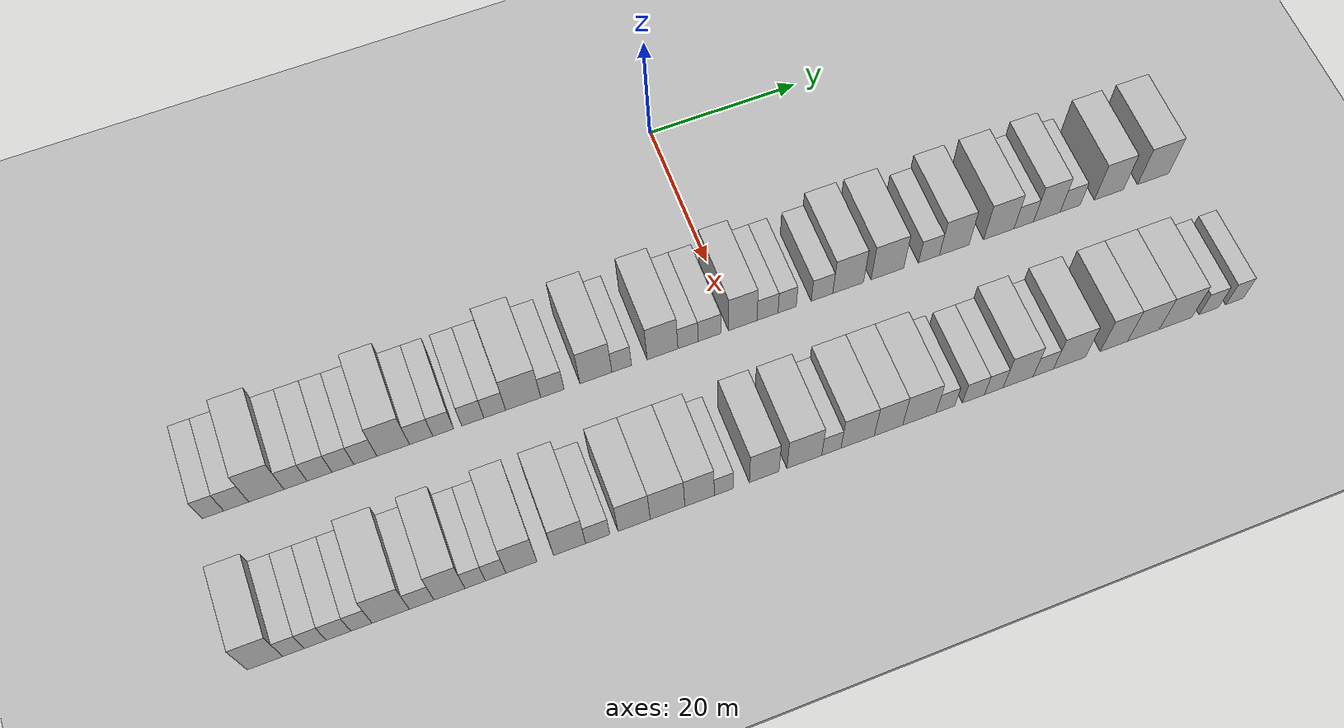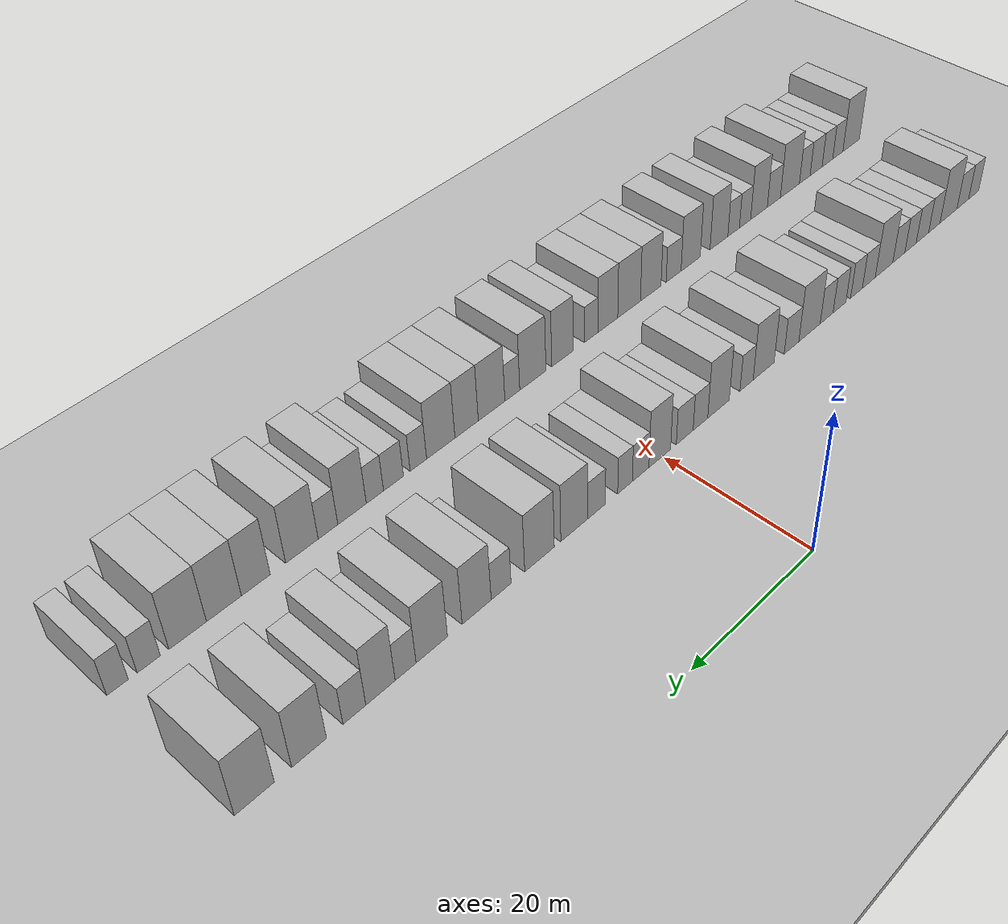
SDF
<sdf version="1.6">
 <world name="default">
  <include><name>ground_plane_1</name><uri>model://HANNAS_ground_plane</uri></include>
  <include>
   <name>ground_plane_2</name>
   <uri>model://HANNAS_ground_plane</uri>
   <pose>100 0 0  0 0 0</pose>
  </include>
  <model name="building_36">
   <static>1</static>
   <pose>25.0000 -65.0861 0 0.000000 0.000000 0.000000</pose>
   <link name="link">
    <pose>0 0 3.00 0 0 0</pose>
    <collision name="collision"><geometry><box><size>10.0000 2.5619 6.0000</size></box></geometry></collision>
    <visual name="visual">
     <cast_shadows>0</cast_shadows>
     <geometry><box><size>10.0000 2.5619 6.0000</size></box></geometry>
     <material>
      <script>
       <uri>model://HANNAS_wall/materials/scripts</uri>
       <uri>model://HANNAS_wall/materials/textures</uri>
       <name>vrc/HANNAS_wall</name>
      </script>
     </material>
    </visual>
   </link>
  </model>
  <model name="building_37">
   <static>1</static>
   <pose>25.0000 -62.3235 0 0.000000 0.000000 0.000000</pose>
   <link name="link">
    <pose>0 0 3.00 0 0 0</pose>
    <collision name="collision"><geometry><box><size>10.0000 2.9633 6.0000</size></box></geometry></collision>
    <visual name="visual">
     <cast_shadows>0</cast_shadows>
     <geometry><box><size>10.0000 2.9633 6.0000</size></box></geometry>
     <material>
      <script>
       <uri>model://HANNAS_wall/materials/scripts</uri>
       <uri>model://HANNAS_wall/materials/textures</uri>
       <name>vrc/HANNAS_wall</name>
      </script>
     </material>
    </visual>
   </link>
  </model>
  <model name="building_38">
   <static>1</static>
   <pose>25.0000 -58.7388 0 0.000000 0.000000 0.000000</pose>
   <link name="link">
    <pose>0 0 4.50 0 0 0</pose>
    <collision name="collision"><geometry><box><size>10.0000 4.2061 9.0000</size></box></geometry></collision>
    <visual name="visual">
     <cast_shadows>0</cast_shadows>
     <geometry><box><size>10.0000 4.2061 9.0000</size></box></geometry>
     <material>
      <script>
       <uri>model://HANNAS_wall/materials/scripts</uri>
       <uri>model://HANNAS_wall/materials/textures</uri>
       <name>vrc/HANNAS_wall</name>
      </script>
     </material>
    </visual>
   </link>
  </model>
  <model name="building_39">
   <static>1</static>
   <pose>25.0000 -55.2406 0 0.000000 0.000000 0.000000</pose>
   <link name="link">
    <pose>0 0 3.00 0 0 0</pose>
    <collision name="collision"><geometry><box><size>10.0000 2.7902 6.0000</size></box></geometry></collision>
    <visual name="visual">
     <cast_shadows>0</cast_shadows>
     <geometry><box><size>10.0000 2.7902 6.0000</size></box></geometry>
     <material>
      <script>
       <uri>model://HANNAS_wall/materials/scripts</uri>
       <uri>model://HANNAS_wall/materials/textures</uri>
       <name>vrc/HANNAS_wall</name>
      </script>
     </material>
    </visual>
   </link>
  </model>
  <model name="building_40">
   <static>1</static>
   <pose>25.0000 -52.3560 0 0.000000 0.000000 0.000000</pose>
   <link name="link">
    <pose>0 0 3.00 0 0 0</pose>
    <collision name="collision"><geometry><box><size>10.0000 2.9790 6.0000</size></box></geometry></collision>
    <visual name="visual">
     <cast_shadows>0</cast_shadows>
     <geometry><box><size>10.0000 2.9790 6.0000</size></box></geometry>
     <material>
      <script>
       <uri>model://HANNAS_wall/materials/scripts</uri>
       <uri>model://HANNAS_wall/materials/textures</uri>
       <name>vrc/HANNAS_wall</name>
      </script>
     </material>
    </visual>
   </link>
  </model>
  <model name="building_41">
   <static>1</static>
   <pose>25.0000 -49.5357 0 0.000000 0.000000 0.000000</pose>
   <link name="link">
    <pose>0 0 3.00 0 0 0</pose>
    <collision name="collision"><geometry><box><size>10.0000 2.6617 6.0000</size></box></geometry></collision>
    <visual name="visual">
     <cast_shadows>0</cast_shadows>
     <geometry><box><size>10.0000 2.6617 6.0000</size></box></geometry>
     <material>
      <script>
       <uri>model://HANNAS_wall/materials/scripts</uri>
       <uri>model://HANNAS_wall/materials/textures</uri>
       <name>vrc/HANNAS_wall</name>
      </script>
     </material>
    </visual>
   </link>
  </model>
  <model name="building_42">
   <static>1</static>
   <pose>25.0000 -46.8010 0 0.000000 0.000000 0.000000</pose>
   <link name="link">
    <pose>0 0 3.00 0 0 0</pose>
    <collision name="collision"><geometry><box><size>10.0000 2.8076 6.0000</size></box></geometry></collision>
    <visual name="visual">
     <cast_shadows>0</cast_shadows>
     <geometry><box><size>10.0000 2.8076 6.0000</size></box></geometry>
     <material>
      <script>
       <uri>model://HANNAS_wall/materials/scripts</uri>
       <uri>model://HANNAS_wall/materials/textures</uri>
       <name>vrc/HANNAS_wall</name>
      </script>
     </material>
    </visual>
   </link>
  </model>
  <model name="building_43">
   <static>1</static>
   <pose>25.0000 -43.4065 0 0.000000 0.000000 0.000000</pose>
   <link name="link">
    <pose>0 0 4.50 0 0 0</pose>
    <collision name="collision"><geometry><box><size>10.0000 3.9816 9.0000</size></box></geometry></collision>
    <visual name="visual">
     <cast_shadows>0</cast_shadows>
     <geometry><box><size>10.0000 3.9816 9.0000</size></box></geometry>
     <material>
      <script>
       <uri>model://HANNAS_wall/materials/scripts</uri>
       <uri>model://HANNAS_wall/materials/textures</uri>
       <name>vrc/HANNAS_wall</name>
      </script>
     </material>
    </visual>
   </link>
  </model>
  <model name="building_44">
   <static>1</static>
   <pose>25.0000 -39.9790 0 0.000000 0.000000 0.000000</pose>
   <link name="link">
    <pose>0 0 3.00 0 0 0</pose>
    <collision name="collision"><geometry><box><size>10.0000 2.8733 6.0000</size></box></geometry></collision>
    <visual name="visual">
     <cast_shadows>0</cast_shadows>
     <geometry><box><size>10.0000 2.8733 6.0000</size></box></geometry>
     <material>
      <script>
       <uri>model://HANNAS_wall/materials/scripts</uri>
       <uri>model://HANNAS_wall/materials/textures</uri>
       <name>vrc/HANNAS_wall</name>
      </script>
     </material>
    </visual>
   </link>
  </model>
  <model name="building_45">
   <static>1</static>
   <pose>25.0000 -37.2530 0 0.000000 0.000000 0.000000</pose>
   <link name="link">
    <pose>0 0 3.00 0 0 0</pose>
    <collision name="collision"><geometry><box><size>10.0000 2.5789 6.0000</size></box></geometry></collision>
    <visual name="visual">
     <cast_shadows>0</cast_shadows>
     <geometry><box><size>10.0000 2.5789 6.0000</size></box></geometry>
     <material>
      <script>
       <uri>model://HANNAS_wall/materials/scripts</uri>
       <uri>model://HANNAS_wall/materials/textures</uri>
       <name>vrc/HANNAS_wall</name>
      </script>
     </material>
    </visual>
   </link>
  </model>
  <model name="building_46">
   <static>1</static>
   <pose>25.0000 -33.5824 0 0.000000 0.000000 0.000000</pose>
   <link name="link">
    <pose>0 0 3.00 0 0 0</pose>
    <collision name="collision"><geometry><box><size>10.0000 2.7622 6.0000</size></box></geometry></collision>
    <visual name="visual">
     <cast_shadows>0</cast_shadows>
     <geometry><box><size>10.0000 2.7622 6.0000</size></box></geometry>
     <material>
      <script>
       <uri>model://HANNAS_wall/materials/scripts</uri>
       <uri>model://HANNAS_wall/materials/textures</uri>
       <name>vrc/HANNAS_wall</name>
      </script>
     </material>
    </visual>
   </link>
  </model>
  <model name="building_47">
   <static>1</static>
   <pose>25.0000 -30.8432 0 0.000000 0.000000 0.000000</pose>
   <link name="link">
    <pose>0 0 3.00 0 0 0</pose>
    <collision name="collision"><geometry><box><size>10.0000 2.7163 6.0000</size></box></geometry></collision>
    <visual name="visual">
     <cast_shadows>0</cast_shadows>
     <geometry><box><size>10.0000 2.7163 6.0000</size></box></geometry>
     <material>
      <script>
       <uri>model://HANNAS_wall/materials/scripts</uri>
       <uri>model://HANNAS_wall/materials/textures</uri>
       <name>vrc/HANNAS_wall</name>
      </script>
     </material>
    </visual>
   </link>
  </model>
  <model name="building_48">
   <static>1</static>
   <pose>25.0000 -27.2847 0 0.000000 0.000000 0.000000</pose>
   <link name="link">
    <pose>0 0 4.50 0 0 0</pose>
    <collision name="collision"><geometry><box><size>10.0000 4.4005 9.0000</size></box></geometry></collision>
    <visual name="visual">
     <cast_shadows>0</cast_shadows>
     <geometry><box><size>10.0000 4.4005 9.0000</size></box></geometry>
     <material>
      <script>
       <uri>model://HANNAS_wall/materials/scripts</uri>
       <uri>model://HANNAS_wall/materials/textures</uri>
       <name>vrc/HANNAS_wall</name>
      </script>
     </material>
    </visual>
   </link>
  </model>
  <model name="building_49">
   <static>1</static>
   <pose>25.0000 -23.6133 0 0.000000 0.000000 0.000000</pose>
   <link name="link">
    <pose>0 0 3.00 0 0 0</pose>
    <collision name="collision"><geometry><box><size>10.0000 2.9424 6.0000</size></box></geometry></collision>
    <visual name="visual">
     <cast_shadows>0</cast_shadows>
     <geometry><box><size>10.0000 2.9424 6.0000</size></box></geometry>
     <material>
      <script>
       <uri>model://HANNAS_wall/materials/scripts</uri>
       <uri>model://HANNAS_wall/materials/textures</uri>
       <name>vrc/HANNAS_wall</name>
      </script>
     </material>
    </visual>
   </link>
  </model>
  <model name="building_50">
   <static>1</static>
   <pose>25.0000 -18.1040 0 0.000000 0.000000 0.000000</pose>
   <link name="link">
    <pose>0 0 4.50 0 0 0</pose>
    <collision name="collision"><geometry><box><size>10.0000 4.0762 9.0000</size></box></geometry></collision>
    <visual name="visual">
     <cast_shadows>0</cast_shadows>
     <geometry><box><size>10.0000 4.0762 9.0000</size></box></geometry>
     <material>
      <script>
       <uri>model://HANNAS_wall/materials/scripts</uri>
       <uri>model://HANNAS_wall/materials/textures</uri>
       <name>vrc/HANNAS_wall</name>
      </script>
     </material>
    </visual>
   </link>
  </model>
  <model name="building_51">
   <static>1</static>
   <pose>25.0000 -14.8109 0 0.000000 0.000000 0.000000</pose>
   <link name="link">
    <pose>0 0 3.00 0 0 0</pose>
    <collision name="collision"><geometry><box><size>10.0000 2.5101 6.0000</size></box></geometry></collision>
    <visual name="visual">
     <cast_shadows>0</cast_shadows>
     <geometry><box><size>10.0000 2.5101 6.0000</size></box></geometry>
     <material>
      <script>
       <uri>model://HANNAS_wall/materials/scripts</uri>
       <uri>model://HANNAS_wall/materials/textures</uri>
       <name>vrc/HANNAS_wall</name>
      </script>
     </material>
    </visual>
   </link>
  </model>
  <model name="building_52">
   <static>1</static>
   <pose>25.0000 -9.5734 0 0.000000 0.000000 0.000000</pose>
   <link name="link">
    <pose>0 0 4.50 0 0 0</pose>
    <collision name="collision"><geometry><box><size>10.0000 3.9649 9.0000</size></box></geometry></collision>
    <visual name="visual">
     <cast_shadows>0</cast_shadows>
     <geometry><box><size>10.0000 3.9649 9.0000</size></box></geometry>
     <material>
      <script>
       <uri>model://HANNAS_wall/materials/scripts</uri>
       <uri>model://HANNAS_wall/materials/textures</uri>
       <name>vrc/HANNAS_wall</name>
      </script>
     </material>
    </visual>
   </link>
  </model>
  <model name="building_53">
   <static>1</static>
   <pose>25.0000 -6.2797 0 0.000000 0.000000 0.000000</pose>
   <link name="link">
    <pose>0 0 3.00 0 0 0</pose>
    <collision name="collision"><geometry><box><size>10.0000 2.6224 6.0000</size></box></geometry></collision>
    <visual name="visual">
     <cast_shadows>0</cast_shadows>
     <geometry><box><size>10.0000 2.6224 6.0000</size></box></geometry>
     <material>
      <script>
       <uri>model://HANNAS_wall/materials/scripts</uri>
       <uri>model://HANNAS_wall/materials/textures</uri>
       <name>vrc/HANNAS_wall</name>
      </script>
     </material>
    </visual>
   </link>
  </model>
  <model name="building_54">
   <static>1</static>
   <pose>25.0000 -3.4822 0 0.000000 0.000000 0.000000</pose>
   <link name="link">
    <pose>0 0 3.00 0 0 0</pose>
    <collision name="collision"><geometry><box><size>10.0000 2.9726 6.0000</size></box></geometry></collision>
    <visual name="visual">
     <cast_shadows>0</cast_shadows>
     <geometry><box><size>10.0000 2.9726 6.0000</size></box></geometry>
     <material>
      <script>
       <uri>model://HANNAS_wall/materials/scripts</uri>
       <uri>model://HANNAS_wall/materials/textures</uri>
       <name>vrc/HANNAS_wall</name>
      </script>
     </material>
    </visual>
   </link>
  </model>
  <model name="building_55">
   <static>1</static>
   <pose>25.0000 0.8563 0 0.000000 0.000000 0.000000</pose>
   <link name="link">
    <pose>0 0 4.50 0 0 0</pose>
    <collision name="collision"><geometry><box><size>10.0000 3.7045 9.0000</size></box></geometry></collision>
    <visual name="visual">
     <cast_shadows>0</cast_shadows>
     <geometry><box><size>10.0000 3.7045 9.0000</size></box></geometry>
     <material>
      <script>
       <uri>model://HANNAS_wall/materials/scripts</uri>
       <uri>model://HANNAS_wall/materials/textures</uri>
       <name>vrc/HANNAS_wall</name>
      </script>
     </material>
    </visual>
   </link>
  </model>
  <model name="building_56">
   <static>1</static>
   <pose>25.0000 4.0962 0 0.000000 0.000000 0.000000</pose>
   <link name="link">
    <pose>0 0 3.00 0 0 0</pose>
    <collision name="collision"><geometry><box><size>10.0000 2.7753 6.0000</size></box></geometry></collision>
    <visual name="visual">
     <cast_shadows>0</cast_shadows>
     <geometry><box><size>10.0000 2.7753 6.0000</size></box></geometry>
     <material>
      <script>
       <uri>model://HANNAS_wall/materials/scripts</uri>
       <uri>model://HANNAS_wall/materials/textures</uri>
       <name>vrc/HANNAS_wall</name>
      </script>
     </material>
    </visual>
   </link>
  </model>
  <model name="building_57">
   <static>1</static>
   <pose>25.0000 6.6887 0 0.000000 0.000000 0.000000</pose>
   <link name="link">
    <pose>0 0 3.00 0 0 0</pose>
    <collision name="collision"><geometry><box><size>10.0000 2.4099 6.0000</size></box></geometry></collision>
    <visual name="visual">
     <cast_shadows>0</cast_shadows>
     <geometry><box><size>10.0000 2.4099 6.0000</size></box></geometry>
     <material>
      <script>
       <uri>model://HANNAS_wall/materials/scripts</uri>
       <uri>model://HANNAS_wall/materials/textures</uri>
       <name>vrc/HANNAS_wall</name>
      </script>
     </material>
    </visual>
   </link>
  </model>
  <model name="building_58">
   <static>1</static>
   <pose>25.0000 11.3192 0 0.000000 0.000000 0.000000</pose>
   <link name="link">
    <pose>0 0 3.00 0 0 0</pose>
    <collision name="collision"><geometry><box><size>10.0000 2.8510 6.0000</size></box></geometry></collision>
    <visual name="visual">
     <cast_shadows>0</cast_shadows>
     <geometry><box><size>10.0000 2.8510 6.0000</size></box></geometry>
     <material>
      <script>
       <uri>model://HANNAS_wall/materials/scripts</uri>
       <uri>model://HANNAS_wall/materials/textures</uri>
       <name>vrc/HANNAS_wall</name>
      </script>
     </material>
    </visual>
   </link>
  </model>
  <model name="building_59">
   <static>1</static>
   <pose>25.0000 14.8123 0 0.000000 0.000000 0.000000</pose>
   <link name="link">
    <pose>0 0 4.50 0 0 0</pose>
    <collision name="collision"><geometry><box><size>10.0000 4.1352 9.0000</size></box></geometry></collision>
    <visual name="visual">
     <cast_shadows>0</cast_shadows>
     <geometry><box><size>10.0000 4.1352 9.0000</size></box></geometry>
     <material>
      <script>
       <uri>model://HANNAS_wall/materials/scripts</uri>
       <uri>model://HANNAS_wall/materials/textures</uri>
       <name>vrc/HANNAS_wall</name>
      </script>
     </material>
    </visual>
   </link>
  </model>
  <model name="building_60">
   <static>1</static>
   <pose>25.0000 20.0872 0 0.000000 0.000000 0.000000</pose>
   <link name="link">
    <pose>0 0 4.50 0 0 0</pose>
    <collision name="collision"><geometry><box><size>10.0000 4.4147 9.0000</size></box></geometry></collision>
    <visual name="visual">
     <cast_shadows>0</cast_shadows>
     <geometry><box><size>10.0000 4.4147 9.0000</size></box></geometry>
     <material>
      <script>
       <uri>model://HANNAS_wall/materials/scripts</uri>
       <uri>model://HANNAS_wall/materials/textures</uri>
       <name>vrc/HANNAS_wall</name>
      </script>
     </material>
    </visual>
   </link>
  </model>
  <model name="building_61">
   <static>1</static>
   <pose>25.0000 25.7175 0 0.000000 0.000000 0.000000</pose>
   <link name="link">
    <pose>0 0 3.00 0 0 0</pose>
    <collision name="collision"><geometry><box><size>10.0000 2.8458 6.0000</size></box></geometry></collision>
    <visual name="visual">
     <cast_shadows>0</cast_shadows>
     <geometry><box><size>10.0000 2.8458 6.0000</size></box></geometry>
     <material>
      <script>
       <uri>model://HANNAS_wall/materials/scripts</uri>
       <uri>model://HANNAS_wall/materials/textures</uri>
       <name>vrc/HANNAS_wall</name>
      </script>
     </material>
    </visual>
   </link>
  </model>
  <model name="building_62">
   <static>1</static>
   <pose>25.0000 29.1685 0 0.000000 0.000000 0.000000</pose>
   <link name="link">
    <pose>0 0 4.50 0 0 0</pose>
    <collision name="collision"><geometry><box><size>10.0000 4.0562 9.0000</size></box></geometry></collision>
    <visual name="visual">
     <cast_shadows>0</cast_shadows>
     <geometry><box><size>10.0000 4.0562 9.0000</size></box></geometry>
     <material>
      <script>
       <uri>model://HANNAS_wall/materials/scripts</uri>
       <uri>model://HANNAS_wall/materials/textures</uri>
       <name>vrc/HANNAS_wall</name>
      </script>
     </material>
    </visual>
   </link>
  </model>
  <model name="building_63">
   <static>1</static>
   <pose>25.0000 35.2940 0 0.000000 0.000000 0.000000</pose>
   <link name="link">
    <pose>0 0 4.50 0 0 0</pose>
    <collision name="collision"><geometry><box><size>10.0000 4.1949 9.0000</size></box></geometry></collision>
    <visual name="visual">
     <cast_shadows>0</cast_shadows>
     <geometry><box><size>10.0000 4.1949 9.0000</size></box></geometry>
     <material>
      <script>
       <uri>model://HANNAS_wall/materials/scripts</uri>
       <uri>model://HANNAS_wall/materials/textures</uri>
       <name>vrc/HANNAS_wall</name>
      </script>
     </material>
    </visual>
   </link>
  </model>
  <model name="building_64">
   <static>1</static>
   <pose>25.0000 38.7479 0 0.000000 0.000000 0.000000</pose>
   <link name="link">
    <pose>0 0 3.00 0 0 0</pose>
    <collision name="collision"><geometry><box><size>10.0000 2.7130 6.0000</size></box></geometry></collision>
    <visual name="visual">
     <cast_shadows>0</cast_shadows>
     <geometry><box><size>10.0000 2.7130 6.0000</size></box></geometry>
     <material>
      <script>
       <uri>model://HANNAS_wall/materials/scripts</uri>
       <uri>model://HANNAS_wall/materials/textures</uri>
       <name>vrc/HANNAS_wall</name>
      </script>
     </material>
    </visual>
   </link>
  </model>
  <model name="building_65">
   <static>1</static>
   <pose>25.0000 41.9593 0 0.000000 0.000000 0.000000</pose>
   <link name="link">
    <pose>0 0 4.50 0 0 0</pose>
    <collision name="collision"><geometry><box><size>10.0000 3.7097 9.0000</size></box></geometry></collision>
    <visual name="visual">
     <cast_shadows>0</cast_shadows>
     <geometry><box><size>10.0000 3.7097 9.0000</size></box></geometry>
     <material>
      <script>
       <uri>model://HANNAS_wall/materials/scripts</uri>
       <uri>model://HANNAS_wall/materials/textures</uri>
       <name>vrc/HANNAS_wall</name>
      </script>
     </material>
    </visual>
   </link>
  </model>
  <model name="building_66">
   <static>1</static>
   <pose>25.0000 45.2217 0 0.000000 0.000000 0.000000</pose>
   <link name="link">
    <pose>0 0 3.00 0 0 0</pose>
    <collision name="collision"><geometry><box><size>10.0000 2.8151 6.0000</size></box></geometry></collision>
    <visual name="visual">
     <cast_shadows>0</cast_shadows>
     <geometry><box><size>10.0000 2.8151 6.0000</size></box></geometry>
     <material>
      <script>
       <uri>model://HANNAS_wall/materials/scripts</uri>
       <uri>model://HANNAS_wall/materials/textures</uri>
       <name>vrc/HANNAS_wall</name>
      </script>
     </material>
    </visual>
   </link>
  </model>
  <model name="building_67">
   <static>1</static>
   <pose>25.0000 50.6788 0 0.000000 0.000000 0.000000</pose>
   <link name="link">
    <pose>0 0 4.50 0 0 0</pose>
    <collision name="collision"><geometry><box><size>10.0000 4.0991 9.0000</size></box></geometry></collision>
    <visual name="visual">
     <cast_shadows>0</cast_shadows>
     <geometry><box><size>10.0000 4.0991 9.0000</size></box></geometry>
     <material>
      <script>
       <uri>model://HANNAS_wall/materials/scripts</uri>
       <uri>model://HANNAS_wall/materials/textures</uri>
       <name>vrc/HANNAS_wall</name>
      </script>
     </material>
    </visual>
   </link>
  </model>
  <model name="building_68">
   <static>1</static>
   <pose>25.0000 56.9663 0 0.000000 0.000000 0.000000</pose>
   <link name="link">
    <pose>0 0 4.50 0 0 0</pose>
    <collision name="collision"><geometry><box><size>10.0000 4.4758 9.0000</size></box></geometry></collision>
    <visual name="visual">
     <cast_shadows>0</cast_shadows>
     <geometry><box><size>10.0000 4.4758 9.0000</size></box></geometry>
     <material>
      <script>
       <uri>model://HANNAS_wall/materials/scripts</uri>
       <uri>model://HANNAS_wall/materials/textures</uri>
       <name>vrc/HANNAS_wall</name>
      </script>
     </material>
    </visual>
   </link>
  </model>
  <model name="building_133">
   <static>1</static>
   <pose>44.0000 -63.9170 0 0.000000 0.000000 0.000000</pose>
   <link name="link">
    <pose>0 0 4.50 0 0 0</pose>
    <collision name="collision"><geometry><box><size>10.0000 4.0803 9.0000</size></box></geometry></collision>
    <visual name="visual">
     <cast_shadows>0</cast_shadows>
     <geometry><box><size>10.0000 4.0803 9.0000</size></box></geometry>
     <material>
      <script>
       <uri>model://HANNAS_wall/materials/scripts</uri>
       <uri>model://HANNAS_wall/materials/textures</uri>
       <name>vrc/HANNAS_wall</name>
      </script>
     </material>
    </visual>
   </link>
  </model>
  <model name="building_134">
   <static>1</static>
   <pose>44.0000 -60.6426 0 0.000000 0.000000 0.000000</pose>
   <link name="link">
    <pose>0 0 3.00 0 0 0</pose>
    <collision name="collision"><geometry><box><size>10.0000 2.4685 6.0000</size></box></geometry></collision>
    <visual name="visual">
     <cast_shadows>0</cast_shadows>
     <geometry><box><size>10.0000 2.4685 6.0000</size></box></geometry>
     <material>
      <script>
       <uri>model://HANNAS_wall/materials/scripts</uri>
       <uri>model://HANNAS_wall/materials/textures</uri>
       <name>vrc/HANNAS_wall</name>
      </script>
     </material>
    </visual>
   </link>
  </model>
  <model name="building_135">
   <static>1</static>
   <pose>44.0000 -58.1357 0 0.000000 0.000000 0.000000</pose>
   <link name="link">
    <pose>0 0 3.00 0 0 0</pose>
    <collision name="collision"><geometry><box><size>10.0000 2.5454 6.0000</size></box></geometry></collision>
    <visual name="visual">
     <cast_shadows>0</cast_shadows>
     <geometry><box><size>10.0000 2.5454 6.0000</size></box></geometry>
     <material>
      <script>
       <uri>model://HANNAS_wall/materials/scripts</uri>
       <uri>model://HANNAS_wall/materials/textures</uri>
       <name>vrc/HANNAS_wall</name>
      </script>
     </material>
    </visual>
   </link>
  </model>
  <model name="building_136">
   <static>1</static>
   <pose>44.0000 -55.4483 0 0.000000 0.000000 0.000000</pose>
   <link name="link">
    <pose>0 0 3.00 0 0 0</pose>
    <collision name="collision"><geometry><box><size>10.0000 2.8293 6.0000</size></box></geometry></collision>
    <visual name="visual">
     <cast_shadows>0</cast_shadows>
     <geometry><box><size>10.0000 2.8293 6.0000</size></box></geometry>
     <material>
      <script>
       <uri>model://HANNAS_wall/materials/scripts</uri>
       <uri>model://HANNAS_wall/materials/textures</uri>
       <name>vrc/HANNAS_wall</name>
      </script>
     </material>
    </visual>
   </link>
  </model>
  <model name="building_137">
   <static>1</static>
   <pose>44.0000 -52.7931 0 0.000000 0.000000 0.000000</pose>
   <link name="link">
    <pose>0 0 3.00 0 0 0</pose>
    <collision name="collision"><geometry><box><size>10.0000 2.4811 6.0000</size></box></geometry></collision>
    <visual name="visual">
     <cast_shadows>0</cast_shadows>
     <geometry><box><size>10.0000 2.4811 6.0000</size></box></geometry>
     <material>
      <script>
       <uri>model://HANNAS_wall/materials/scripts</uri>
       <uri>model://HANNAS_wall/materials/textures</uri>
       <name>vrc/HANNAS_wall</name>
      </script>
     </material>
    </visual>
   </link>
  </model>
  <model name="building_138">
   <static>1</static>
   <pose>44.0000 -49.3744 0 0.000000 0.000000 0.000000</pose>
   <link name="link">
    <pose>0 0 4.50 0 0 0</pose>
    <collision name="collision"><geometry><box><size>10.0000 4.3562 9.0000</size></box></geometry></collision>
    <visual name="visual">
     <cast_shadows>0</cast_shadows>
     <geometry><box><size>10.0000 4.3562 9.0000</size></box></geometry>
     <material>
      <script>
       <uri>model://HANNAS_wall/materials/scripts</uri>
       <uri>model://HANNAS_wall/materials/textures</uri>
       <name>vrc/HANNAS_wall</name>
      </script>
     </material>
    </visual>
   </link>
  </model>
  <model name="building_139">
   <static>1</static>
   <pose>44.0000 -45.7335 0 0.000000 0.000000 0.000000</pose>
   <link name="link">
    <pose>0 0 3.00 0 0 0</pose>
    <collision name="collision"><geometry><box><size>10.0000 2.9257 6.0000</size></box></geometry></collision>
    <visual name="visual">
     <cast_shadows>0</cast_shadows>
     <geometry><box><size>10.0000 2.9257 6.0000</size></box></geometry>
     <material>
      <script>
       <uri>model://HANNAS_wall/materials/scripts</uri>
       <uri>model://HANNAS_wall/materials/textures</uri>
       <name>vrc/HANNAS_wall</name>
      </script>
     </material>
    </visual>
   </link>
  </model>
  <model name="building_140">
   <static>1</static>
   <pose>44.0000 -42.4395 0 0.000000 0.000000 0.000000</pose>
   <link name="link">
    <pose>0 0 4.50 0 0 0</pose>
    <collision name="collision"><geometry><box><size>10.0000 3.6622 9.0000</size></box></geometry></collision>
    <visual name="visual">
     <cast_shadows>0</cast_shadows>
     <geometry><box><size>10.0000 3.6622 9.0000</size></box></geometry>
     <material>
      <script>
       <uri>model://HANNAS_wall/materials/scripts</uri>
       <uri>model://HANNAS_wall/materials/textures</uri>
       <name>vrc/HANNAS_wall</name>
      </script>
     </material>
    </visual>
   </link>
  </model>
  <model name="building_141">
   <static>1</static>
   <pose>44.0000 -39.3945 0 0.000000 0.000000 0.000000</pose>
   <link name="link">
    <pose>0 0 3.00 0 0 0</pose>
    <collision name="collision"><geometry><box><size>10.0000 2.4278 6.0000</size></box></geometry></collision>
    <visual name="visual">
     <cast_shadows>0</cast_shadows>
     <geometry><box><size>10.0000 2.4278 6.0000</size></box></geometry>
     <material>
      <script>
       <uri>model://HANNAS_wall/materials/scripts</uri>
       <uri>model://HANNAS_wall/materials/textures</uri>
       <name>vrc/HANNAS_wall</name>
      </script>
     </material>
    </visual>
   </link>
  </model>
  <model name="building_142">
   <static>1</static>
   <pose>44.0000 -36.9558 0 0.000000 0.000000 0.000000</pose>
   <link name="link">
    <pose>0 0 3.00 0 0 0</pose>
    <collision name="collision"><geometry><box><size>10.0000 2.4497 6.0000</size></box></geometry></collision>
    <visual name="visual">
     <cast_shadows>0</cast_shadows>
     <geometry><box><size>10.0000 2.4497 6.0000</size></box></geometry>
     <material>
      <script>
       <uri>model://HANNAS_wall/materials/scripts</uri>
       <uri>model://HANNAS_wall/materials/textures</uri>
       <name>vrc/HANNAS_wall</name>
      </script>
     </material>
    </visual>
   </link>
  </model>
  <model name="building_143">
   <static>1</static>
   <pose>44.0000 -33.8652 0 0.000000 0.000000 0.000000</pose>
   <link name="link">
    <pose>0 0 4.50 0 0 0</pose>
    <collision name="collision"><geometry><box><size>10.0000 3.7314 9.0000</size></box></geometry></collision>
    <visual name="visual">
     <cast_shadows>0</cast_shadows>
     <geometry><box><size>10.0000 3.7314 9.0000</size></box></geometry>
     <material>
      <script>
       <uri>model://HANNAS_wall/materials/scripts</uri>
       <uri>model://HANNAS_wall/materials/textures</uri>
       <name>vrc/HANNAS_wall</name>
      </script>
     </material>
    </visual>
   </link>
  </model>
  <model name="building_144">
   <static>1</static>
   <pose>44.0000 -28.0579 0 0.000000 0.000000 0.000000</pose>
   <link name="link">
    <pose>0 0 4.50 0 0 0</pose>
    <collision name="collision"><geometry><box><size>10.0000 3.8833 9.0000</size></box></geometry></collision>
    <visual name="visual">
     <cast_shadows>0</cast_shadows>
     <geometry><box><size>10.0000 3.8833 9.0000</size></box></geometry>
     <material>
      <script>
       <uri>model://HANNAS_wall/materials/scripts</uri>
       <uri>model://HANNAS_wall/materials/textures</uri>
       <name>vrc/HANNAS_wall</name>
      </script>
     </material>
    </visual>
   </link>
  </model>
  <model name="building_145">
   <static>1</static>
   <pose>44.0000 -24.6381 0 0.000000 0.000000 0.000000</pose>
   <link name="link">
    <pose>0 0 3.00 0 0 0</pose>
    <collision name="collision"><geometry><box><size>10.0000 2.9562 6.0000</size></box></geometry></collision>
    <visual name="visual">
     <cast_shadows>0</cast_shadows>
     <geometry><box><size>10.0000 2.9562 6.0000</size></box></geometry>
     <material>
      <script>
       <uri>model://HANNAS_wall/materials/scripts</uri>
       <uri>model://HANNAS_wall/materials/textures</uri>
       <name>vrc/HANNAS_wall</name>
      </script>
     </material>
    </visual>
   </link>
  </model>
  <model name="building_146">
   <static>1</static>
   <pose>44.0000 -20.1810 0 0.000000 0.000000 0.000000</pose>
   <link name="link">
    <pose>0 0 4.50 0 0 0</pose>
    <collision name="collision"><geometry><box><size>10.0000 3.9580 9.0000</size></box></geometry></collision>
    <visual name="visual">
     <cast_shadows>0</cast_shadows>
     <geometry><box><size>10.0000 3.9580 9.0000</size></box></geometry>
     <material>
      <script>
       <uri>model://HANNAS_wall/materials/scripts</uri>
       <uri>model://HANNAS_wall/materials/textures</uri>
       <name>vrc/HANNAS_wall</name>
      </script>
     </material>
    </visual>
   </link>
  </model>
  <model name="building_147">
   <static>1</static>
   <pose>44.0000 -16.0697 0 0.000000 0.000000 0.000000</pose>
   <link name="link">
    <pose>0 0 4.50 0 0 0</pose>
    <collision name="collision"><geometry><box><size>10.0000 4.2647 9.0000</size></box></geometry></collision>
    <visual name="visual">
     <cast_shadows>0</cast_shadows>
     <geometry><box><size>10.0000 4.2647 9.0000</size></box></geometry>
     <material>
      <script>
       <uri>model://HANNAS_wall/materials/scripts</uri>
       <uri>model://HANNAS_wall/materials/textures</uri>
       <name>vrc/HANNAS_wall</name>
      </script>
     </material>
    </visual>
   </link>
  </model>
  <model name="building_148">
   <static>1</static>
   <pose>44.0000 -12.1095 0 0.000000 0.000000 0.000000</pose>
   <link name="link">
    <pose>0 0 4.50 0 0 0</pose>
    <collision name="collision"><geometry><box><size>10.0000 3.6557 9.0000</size></box></geometry></collision>
    <visual name="visual">
     <cast_shadows>0</cast_shadows>
     <geometry><box><size>10.0000 3.6557 9.0000</size></box></geometry>
     <material>
      <script>
       <uri>model://HANNAS_wall/materials/scripts</uri>
       <uri>model://HANNAS_wall/materials/textures</uri>
       <name>vrc/HANNAS_wall</name>
      </script>
     </material>
    </visual>
   </link>
  </model>
  <model name="building_149">
   <static>1</static>
   <pose>44.0000 -9.0812 0 0.000000 0.000000 0.000000</pose>
   <link name="link">
    <pose>0 0 3.00 0 0 0</pose>
    <collision name="collision"><geometry><box><size>10.0000 2.4008 6.0000</size></box></geometry></collision>
    <visual name="visual">
     <cast_shadows>0</cast_shadows>
     <geometry><box><size>10.0000 2.4008 6.0000</size></box></geometry>
     <material>
      <script>
       <uri>model://HANNAS_wall/materials/scripts</uri>
       <uri>model://HANNAS_wall/materials/textures</uri>
       <name>vrc/HANNAS_wall</name>
      </script>
     </material>
    </visual>
   </link>
  </model>
  <model name="building_150">
   <static>1</static>
   <pose>44.0000 -4.0137 0 0.000000 0.000000 0.000000</pose>
   <link name="link">
    <pose>0 0 4.50 0 0 0</pose>
    <collision name="collision"><geometry><box><size>10.0000 3.7342 9.0000</size></box></geometry></collision>
    <visual name="visual">
     <cast_shadows>0</cast_shadows>
     <geometry><box><size>10.0000 3.7342 9.0000</size></box></geometry>
     <material>
      <script>
       <uri>model://HANNAS_wall/materials/scripts</uri>
       <uri>model://HANNAS_wall/materials/textures</uri>
       <name>vrc/HANNAS_wall</name>
      </script>
     </material>
    </visual>
   </link>
  </model>
  <model name="building_151">
   <static>1</static>
   <pose>44.0000 1.0608 0 0.000000 0.000000 0.000000</pose>
   <link name="link">
    <pose>0 0 4.50 0 0 0</pose>
    <collision name="collision"><geometry><box><size>10.0000 4.4149 9.0000</size></box></geometry></collision>
    <visual name="visual">
     <cast_shadows>0</cast_shadows>
     <geometry><box><size>10.0000 4.4149 9.0000</size></box></geometry>
     <material>
      <script>
       <uri>model://HANNAS_wall/materials/scripts</uri>
       <uri>model://HANNAS_wall/materials/textures</uri>
       <name>vrc/HANNAS_wall</name>
      </script>
     </material>
    </visual>
   </link>
  </model>
  <model name="building_152">
   <static>1</static>
   <pose>44.0000 4.4956 0 0.000000 0.000000 0.000000</pose>
   <link name="link">
    <pose>0 0 3.00 0 0 0</pose>
    <collision name="collision"><geometry><box><size>10.0000 2.4546 6.0000</size></box></geometry></collision>
    <visual name="visual">
     <cast_shadows>0</cast_shadows>
     <geometry><box><size>10.0000 2.4546 6.0000</size></box></geometry>
     <material>
      <script>
       <uri>model://HANNAS_wall/materials/scripts</uri>
       <uri>model://HANNAS_wall/materials/textures</uri>
       <name>vrc/HANNAS_wall</name>
      </script>
     </material>
    </visual>
   </link>
  </model>
  <model name="building_153">
   <static>1</static>
   <pose>44.0000 7.8673 0 0.000000 0.000000 0.000000</pose>
   <link name="link">
    <pose>0 0 4.50 0 0 0</pose>
    <collision name="collision"><geometry><box><size>10.0000 4.2887 9.0000</size></box></geometry></collision>
    <visual name="visual">
     <cast_shadows>0</cast_shadows>
     <geometry><box><size>10.0000 4.2887 9.0000</size></box></geometry>
     <material>
      <script>
       <uri>model://HANNAS_wall/materials/scripts</uri>
       <uri>model://HANNAS_wall/materials/textures</uri>
       <name>vrc/HANNAS_wall</name>
      </script>
     </material>
    </visual>
   </link>
  </model>
  <model name="building_154">
   <static>1</static>
   <pose>44.0000 11.8454 0 0.000000 0.000000 0.000000</pose>
   <link name="link">
    <pose>0 0 4.50 0 0 0</pose>
    <collision name="collision"><geometry><box><size>10.0000 3.6676 9.0000</size></box></geometry></collision>
    <visual name="visual">
     <cast_shadows>0</cast_shadows>
     <geometry><box><size>10.0000 3.6676 9.0000</size></box></geometry>
     <material>
      <script>
       <uri>model://HANNAS_wall/materials/scripts</uri>
       <uri>model://HANNAS_wall/materials/textures</uri>
       <name>vrc/HANNAS_wall</name>
      </script>
     </material>
    </visual>
   </link>
  </model>
  <model name="building_155">
   <static>1</static>
   <pose>44.0000 15.8486 0 0.000000 0.000000 0.000000</pose>
   <link name="link">
    <pose>0 0 4.50 0 0 0</pose>
    <collision name="collision"><geometry><box><size>10.0000 4.3387 9.0000</size></box></geometry></collision>
    <visual name="visual">
     <cast_shadows>0</cast_shadows>
     <geometry><box><size>10.0000 4.3387 9.0000</size></box></geometry>
     <material>
      <script>
       <uri>model://HANNAS_wall/materials/scripts</uri>
       <uri>model://HANNAS_wall/materials/textures</uri>
       <name>vrc/HANNAS_wall</name>
      </script>
     </material>
    </visual>
   </link>
  </model>
  <model name="building_156">
   <static>1</static>
   <pose>44.0000 19.2435 0 0.000000 0.000000 0.000000</pose>
   <link name="link">
    <pose>0 0 3.00 0 0 0</pose>
    <collision name="collision"><geometry><box><size>10.0000 2.4511 6.0000</size></box></geometry></collision>
    <visual name="visual">
     <cast_shadows>0</cast_shadows>
     <geometry><box><size>10.0000 2.4511 6.0000</size></box></geometry>
     <material>
      <script>
       <uri>model://HANNAS_wall/materials/scripts</uri>
       <uri>model://HANNAS_wall/materials/textures</uri>
       <name>vrc/HANNAS_wall</name>
      </script>
     </material>
    </visual>
   </link>
  </model>
  <model name="building_157">
   <static>1</static>
   <pose>44.0000 22.9190 0 0.000000 0.000000 0.000000</pose>
   <link name="link">
    <pose>0 0 3.00 0 0 0</pose>
    <collision name="collision"><geometry><box><size>10.0000 2.8998 6.0000</size></box></geometry></collision>
    <visual name="visual">
     <cast_shadows>0</cast_shadows>
     <geometry><box><size>10.0000 2.8998 6.0000</size></box></geometry>
     <material>
      <script>
       <uri>model://HANNAS_wall/materials/scripts</uri>
       <uri>model://HANNAS_wall/materials/textures</uri>
       <name>vrc/HANNAS_wall</name>
      </script>
     </material>
    </visual>
   </link>
  </model>
  <model name="building_158">
   <static>1</static>
   <pose>44.0000 25.5972 0 0.000000 0.000000 0.000000</pose>
   <link name="link">
    <pose>0 0 3.00 0 0 0</pose>
    <collision name="collision"><geometry><box><size>10.0000 2.4566 6.0000</size></box></geometry></collision>
    <visual name="visual">
     <cast_shadows>0</cast_shadows>
     <geometry><box><size>10.0000 2.4566 6.0000</size></box></geometry>
     <material>
      <script>
       <uri>model://HANNAS_wall/materials/scripts</uri>
       <uri>model://HANNAS_wall/materials/textures</uri>
       <name>vrc/HANNAS_wall</name>
      </script>
     </material>
    </visual>
   </link>
  </model>
  <model name="building_159">
   <static>1</static>
   <pose>44.0000 28.8161 0 0.000000 0.000000 0.000000</pose>
   <link name="link">
    <pose>0 0 4.50 0 0 0</pose>
    <collision name="collision"><geometry><box><size>10.0000 3.9812 9.0000</size></box></geometry></collision>
    <visual name="visual">
     <cast_shadows>0</cast_shadows>
     <geometry><box><size>10.0000 3.9812 9.0000</size></box></geometry>
     <material>
      <script>
       <uri>model://HANNAS_wall/materials/scripts</uri>
       <uri>model://HANNAS_wall/materials/textures</uri>
       <name>vrc/HANNAS_wall</name>
      </script>
     </material>
    </visual>
   </link>
  </model>
  <model name="building_160">
   <static>1</static>
   <pose>44.0000 32.1467 0 0.000000 0.000000 0.000000</pose>
   <link name="link">
    <pose>0 0 3.00 0 0 0</pose>
    <collision name="collision"><geometry><box><size>10.0000 2.6800 6.0000</size></box></geometry></collision>
    <visual name="visual">
     <cast_shadows>0</cast_shadows>
     <geometry><box><size>10.0000 2.6800 6.0000</size></box></geometry>
     <material>
      <script>
       <uri>model://HANNAS_wall/materials/scripts</uri>
       <uri>model://HANNAS_wall/materials/textures</uri>
       <name>vrc/HANNAS_wall</name>
      </script>
     </material>
    </visual>
   </link>
  </model>
  <model name="building_161">
   <static>1</static>
   <pose>44.0000 35.6534 0 0.000000 0.000000 0.000000</pose>
   <link name="link">
    <pose>0 0 4.50 0 0 0</pose>
    <collision name="collision"><geometry><box><size>10.0000 4.3335 9.0000</size></box></geometry></collision>
    <visual name="visual">
     <cast_shadows>0</cast_shadows>
     <geometry><box><size>10.0000 4.3335 9.0000</size></box></geometry>
     <material>
      <script>
       <uri>model://HANNAS_wall/materials/scripts</uri>
       <uri>model://HANNAS_wall/materials/textures</uri>
       <name>vrc/HANNAS_wall</name>
      </script>
     </material>
    </visual>
   </link>
  </model>
  <model name="building_162">
   <static>1</static>
   <pose>44.0000 41.6552 0 0.000000 0.000000 0.000000</pose>
   <link name="link">
    <pose>0 0 4.50 0 0 0</pose>
    <collision name="collision"><geometry><box><size>10.0000 3.6700 9.0000</size></box></geometry></collision>
    <visual name="visual">
     <cast_shadows>0</cast_shadows>
     <geometry><box><size>10.0000 3.6700 9.0000</size></box></geometry>
     <material>
      <script>
       <uri>model://HANNAS_wall/materials/scripts</uri>
       <uri>model://HANNAS_wall/materials/textures</uri>
       <name>vrc/HANNAS_wall</name>
      </script>
     </material>
    </visual>
   </link>
  </model>
  <model name="building_163">
   <static>1</static>
   <pose>44.0000 45.6465 0 0.000000 0.000000 0.000000</pose>
   <link name="link">
    <pose>0 0 4.50 0 0 0</pose>
    <collision name="collision"><geometry><box><size>10.0000 4.3127 9.0000</size></box></geometry></collision>
    <visual name="visual">
     <cast_shadows>0</cast_shadows>
     <geometry><box><size>10.0000 4.3127 9.0000</size></box></geometry>
     <material>
      <script>
       <uri>model://HANNAS_wall/materials/scripts</uri>
       <uri>model://HANNAS_wall/materials/textures</uri>
       <name>vrc/HANNAS_wall</name>
      </script>
     </material>
    </visual>
   </link>
  </model>
  <model name="building_164">
   <static>1</static>
   <pose>44.0000 50.0450 0 0.000000 0.000000 0.000000</pose>
   <link name="link">
    <pose>0 0 4.50 0 0 0</pose>
    <collision name="collision"><geometry><box><size>10.0000 4.4842 9.0000</size></box></geometry></collision>
    <visual name="visual">
     <cast_shadows>0</cast_shadows>
     <geometry><box><size>10.0000 4.4842 9.0000</size></box></geometry>
     <material>
      <script>
       <uri>model://HANNAS_wall/materials/scripts</uri>
       <uri>model://HANNAS_wall/materials/textures</uri>
       <name>vrc/HANNAS_wall</name>
      </script>
     </material>
    </visual>
   </link>
  </model>
  <model name="building_165">
   <static>1</static>
   <pose>44.0000 54.6286 0 0.000000 0.000000 0.000000</pose>
   <link name="link">
    <pose>0 0 3.00 0 0 0</pose>
    <collision name="collision"><geometry><box><size>10.0000 2.6832 6.0000</size></box></geometry></collision>
    <visual name="visual">
     <cast_shadows>0</cast_shadows>
     <geometry><box><size>10.0000 2.6832 6.0000</size></box></geometry>
     <material>
      <script>
       <uri>model://HANNAS_wall/materials/scripts</uri>
       <uri>model://HANNAS_wall/materials/textures</uri>
       <name>vrc/HANNAS_wall</name>
      </script>
     </material>
    </visual>
   </link>
  </model>
  <model name="building_166">
   <static>1</static>
   <pose>44.0000 58.1825 0 0.000000 0.000000 0.000000</pose>
   <link name="link">
    <pose>0 0 3.00 0 0 0</pose>
    <collision name="collision"><geometry><box><size>10.0000 2.4245 6.0000</size></box></geometry></collision>
    <visual name="visual">
     <cast_shadows>0</cast_shadows>
     <geometry><box><size>10.0000 2.4245 6.0000</size></box></geometry>
     <material>
      <script>
       <uri>model://HANNAS_wall/materials/scripts</uri>
       <uri>model://HANNAS_wall/materials/textures</uri>
       <name>vrc/HANNAS_wall</name>
      </script>
     </material>
    </visual>
   </link>
  </model>
 </world>
</sdf>
